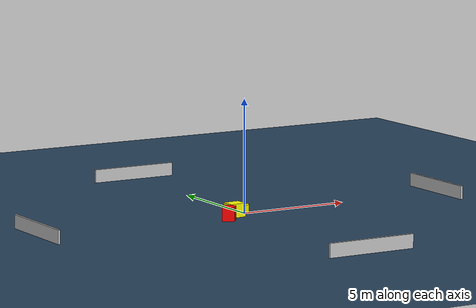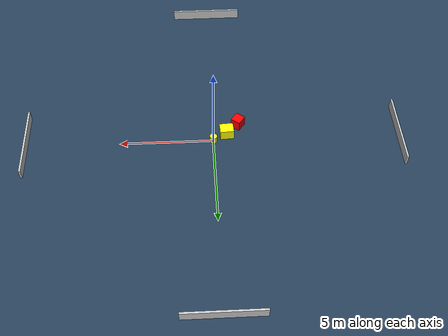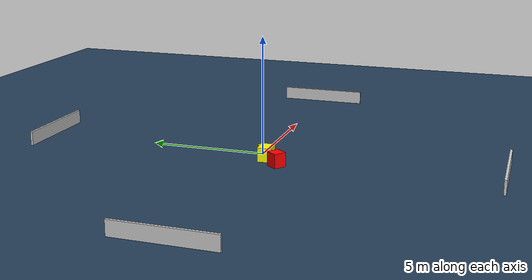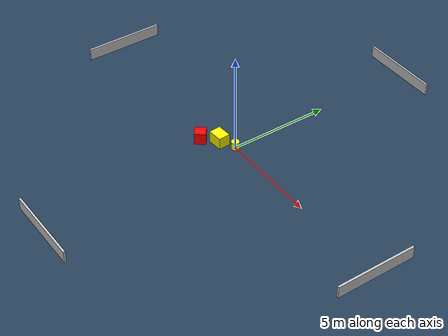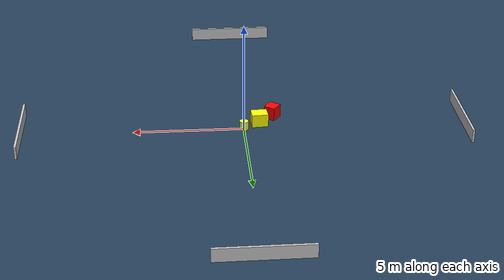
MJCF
<?xml version="1.0" ?>
<mujoco model="generated_environment">
  <option timestep="0.01" integrator="RK4" cone="elliptic"/>
  <default>
    <geom density="1"/>
  </default>
  <asset>
    <texture builtin="gradient" height="3072" name="skybox" rgb1="0.3 0.5 0.7" rgb2="0 0 0" type="skybox" width="512"/>
    <texture builtin="checker" height="300" name="groundplane" rgb1="0.2 0.3 0.4" rgb2="0.1 0.2 0.3" type="2d" width="300"/>
    <material name="groundplane" reflectance="0.2" texrepeat="5 5" texture="groundplane"/>
  </asset>
  <worldbody>
    <light dir="0 0 -1" directional="true" pos="0 0 1.5"/>
    <geom condim="3" friction="0.5 0.005 0.001" material="groundplane" name="floor" pos="0 0 0" size="0 0 0.05" type="plane"/>
    <body name="walls">
      <geom name="wall_1" condim="4" pos="-10.0 0.0 0.3" rgba="0.800000011920929 0.800000011920929 0.800000011920929 1.0" size="0.05 2.0 0.3" type="box"/>
      <geom name="wall_2" condim="4" pos="10.0 0.0 0.3" rgba="0.800000011920929 0.800000011920929 0.800000011920929 1.0" size="0.05 2.0 0.3" type="box"/>
      <geom name="wall_3" condim="4" pos="0.0 -10.0 0.3" rgba="0.800000011920929 0.800000011920929 0.800000011920929 1.0" size="2.0 0.05 0.3" type="box"/>
      <geom name="wall_4" condim="4" pos="0.0 10.0 0.3" rgba="0.800000011920929 0.800000011920929 0.800000011920929 1.0" size="2.0 0.05 0.3" type="box"/>
    </body>
    <body name="robot">
      <joint name="joint_x" type="slide" pos="0 0 0" axis="1 0 0"/>
      <joint name="joint_y" type="slide" pos="0 0 0" axis="0 1 0"/>
      <geom name="robot" type="cylinder" pos="0.0 0.0 0.2" size="0.2 0.2 0.0" mass="5.0" friction="1.0 0.005 0.0001" condim="4" rgba="1.0 1.0 0.0 1.0"/>
    </body>
    <body name="obstacle_1_movable">
      <geom name="obstacle_1_movable" condim="4" pos="-0.7236948221784922 -0.38518833064840685 0.3" euler="0 0 4.200407960105994" friction="0.0 0.005 0.001" rgba="1.0 1.0 0.0 1.0" size="0.36797503583736313 0.2934297524942142 0.3" type="box" mass="0.1"/>
      <joint type="free"/>
    </body>
    <body name="obstacle_2_static">
      <geom name="obstacle_2_static" condim="4" pos="-1.3749915351113478 -1.0270147312032272 0.3" euler="0 0 52.33306527672239" friction="0.0 0.005 0.001" rgba="1.0 0.0 0.0 1.0" size="0.2789305604120449 0.26898570451937553 0.3" type="box"/>
    </body>
  </worldbody>
  <actuator>
    <motor name="actuator_x" joint="joint_x" gear="1" ctrlrange="-1 1"/>
    <motor name="actuator_y" joint="joint_y" gear="1" ctrlrange="-1 1"/>
  </actuator>
</mujoco>
